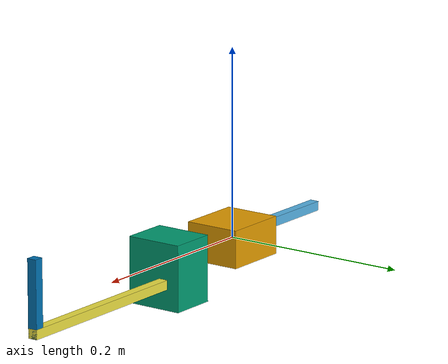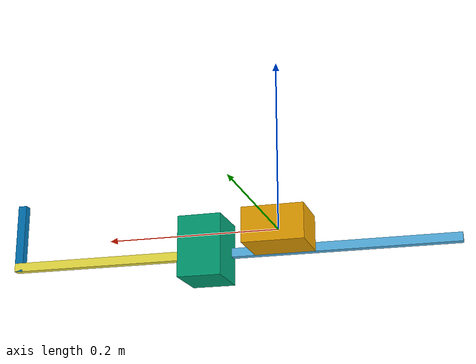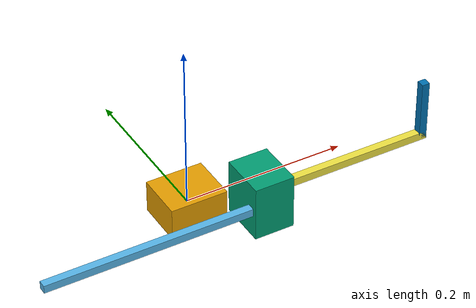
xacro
<?xml version="1.0"?>

<robot xmlns:xacro="http://www.ros.org/wiki/xacro" name="my_robot">

<xacro:property name="base_l" value="0.07"/>
<xacro:property name="base_w" value="0.06"/>
<xacro:property name="base_h" value="0.04"/>

<xacro:property name="arm_l" value="0.26"/>
<xacro:property name="arm_w" value="0.01"/>
<xacro:property name="arm_h" value="0.01"/>

<xacro:property name="mount_l" value="0.050"/>
<xacro:property name="mount_w" value="0.061"/>
<xacro:property name="mount_h" value="0.07"/>

<xacro:property name="end_effector_1_l" value="0.207"/>
<xacro:property name="end_effector_1_w" value="0.01"/>
<xacro:property name="end_effector_1_h" value="0.01"/>

<xacro:property name="end_effector_2_l" value="0.01"/>
<xacro:property name="end_effector_2_w" value="0.01"/>
<xacro:property name="end_effector_2_h" value="0.08"/>

<xacro:property name="pi" value="3.141592654"/>

	<link name="base">
		<visual>
			<geometry>
				<box size="${base_l} ${base_w} ${base_h}"/>
			</geometry>
			<origin rpy="0 0 0" xyz="0 0 0"/>
		</visual>
	</link>

	<link name="arm">
		<visual>
			<geometry>
				<box size="${arm_l} ${arm_w} ${arm_h}"/>
			</geometry>
			<origin rpy="0 0 0" xyz="0 0 0"/>
		</visual>
	</link>

	<link name="mount">
		<visual>
			<geometry>
				<box size="${mount_l} ${mount_w} ${mount_h}"/>
			</geometry>
			<origin xyz="0 0 0"/>
		</visual>
	</link>

	<link name="end_effector_1">
		<visual>
			<geometry>
				<box size="${end_effector_1_l} ${end_effector_1_w} ${end_effector_1_h}"/>
			</geometry>
			<origin xyz="0 0 0"/>
		</visual>
	</link>

	<link name="end_effector_2">
		<visual>
			<geometry>
				<box size="${end_effector_2_l} ${end_effector_2_w} ${end_effector_2_h}"/>
			</geometry>
			<origin xyz="0 0 0"/>
		</visual>
	</link>

	<joint name ="base_to_arm" type="prismatic">
		<parent link="base"/>
		<child link="arm"/>
		<axis xyz="1 0 0"/>
		<limit effort="1" lower="0" upper="0.16" velocity="1"/>
		<origin xyz="${((base_l-arm_l)/2) + 0.028} ${-(base_w+arm_w)/2} ${(arm_h-base_h)/2}"/>
	</joint>

	<joint name ="arm_to_mount" type="fixed">
		<parent link="arm"/>
		<child link="mount"/>
		<origin xyz="${(arm_l+mount_l)/2} 0.02 0"/>
	</joint>

	<joint name ="mount_to_end_effector_1" type="revolute">
		<parent link="mount"/>
		<child link="end_effector_1"/>
		<axis xyz="1 0 0"/>
		<limit effort="1" lower="-1.58" upper="0" velocity="1"/>
		<origin xyz="${(mount_l+end_effector_1_l)/2} 0.012 -0.008"/>
	</joint>

	<joint name ="end_effector_1_to_end_effector_2" type="fixed">
		<parent link="end_effector_1"/>
		<child link="end_effector_2"/>
		<origin xyz="${(end_effector_1_l-end_effector_2_l)/2} 0 ${(end_effector_2_h-end_effector_1_h)/2}"/>
	</joint>

</robot>
